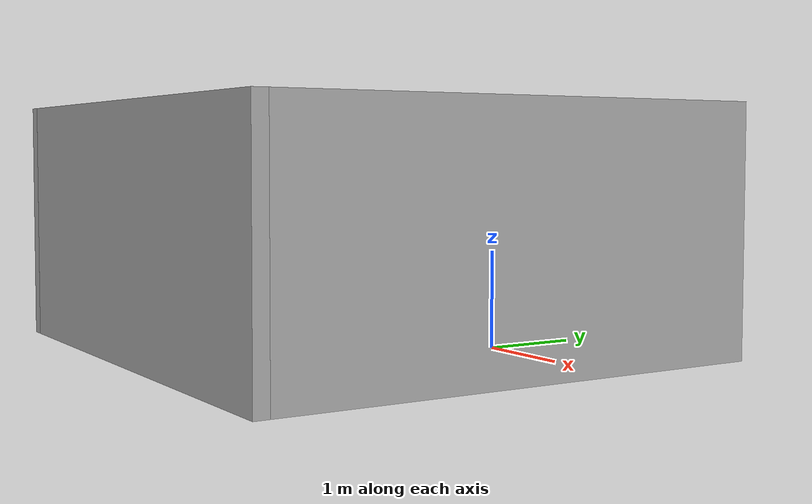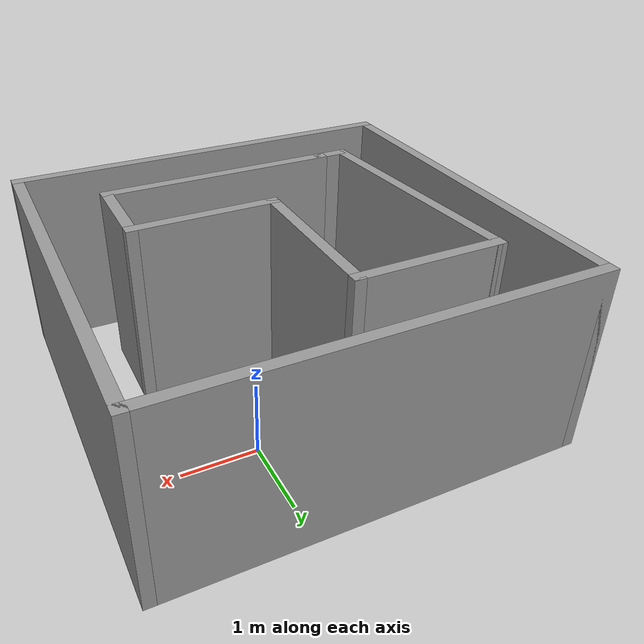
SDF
<?xml version='1.0'?>
<sdf version='1.6'>
  <model name='mymap5'>
    <pose frame=''>-0.82505 -1.06803 0 0 -0 0</pose>
    <link name='Wall_0'>
      <collision name='Wall_0_Collision'>
        <geometry>
          <box>
            <size>3.25 0.15 2.5</size>
          </box>
        </geometry>
        <pose frame=''>0 0 1.25 0 -0 0</pose>
      </collision>
      <visual name='Wall_0_Visual'>
        <pose frame=''>0 0 1.25 0 -0 0</pose>
        <geometry>
          <box>
            <size>3.25 0.15 2.5</size>
          </box>
        </geometry>
        <material>
          <script>
            <uri>file://media/materials/scripts/gazebo.material</uri>
            <name>Gazebo/Grey</name>
          </script>
          <ambient>1 1 1 1</ambient>
        </material>
      </visual>
      <pose frame=''>0.15505 -1.64197 0 0 -0 0</pose>
    </link>
    <link name='Wall_10'>
      <collision name='Wall_10_Collision'>
        <geometry>
          <box>
            <size>3.35975 0.15 2.5</size>
          </box>
        </geometry>
        <pose frame=''>0 0 1.25 0 -0 0</pose>
      </collision>
      <visual name='Wall_10_Visual'>
        <pose frame=''>0 0 1.25 0 -0 0</pose>
        <geometry>
          <box>
            <size>3.35975 0.15 2.5</size>
          </box>
        </geometry>
        <material>
          <script>
            <uri>file://media/materials/scripts/gazebo.material</uri>
            <name>Gazebo/Grey</name>
          </script>
          <ambient>1 1 1 1</ambient>
        </material>
      </visual>
      <pose frame=''>-1.86995 -0.041975 0 0 -0 1.64876</pose>
    </link>
    <link name='Wall_12'>
      <collision name='Wall_12_Collision'>
        <geometry>
          <box>
            <size>5.5 0.15 2.5</size>
          </box>
        </geometry>
        <pose frame=''>0 0 1.25 0 -0 0</pose>
      </collision>
      <visual name='Wall_12_Visual'>
        <pose frame=''>0 0 1.25 0 -0 0</pose>
        <geometry>
          <box>
            <size>5.5 0.15 2.5</size>
          </box>
        </geometry>
        <material>
          <script>
            <uri>file://media/materials/scripts/gazebo.material</uri>
            <name>Gazebo/Grey</name>
          </script>
          <ambient>1 1 1 1</ambient>
        </material>
      </visual>
      <pose frame=''>0 2.55 0 0 -0 0</pose>
    </link>
    <link name='Wall_13'>
      <collision name='Wall_13_Collision'>
        <geometry>
          <box>
            <size>5.25 0.15 2.5</size>
          </box>
        </geometry>
        <pose frame=''>0 0 1.25 0 -0 0</pose>
      </collision>
      <visual name='Wall_13_Visual'>
        <pose frame=''>0 0 1.25 0 -0 0</pose>
        <geometry>
          <box>
            <size>5.25 0.15 2.5</size>
          </box>
        </geometry>
        <material>
          <script>
            <uri>file://media/materials/scripts/gazebo.material</uri>
            <name>Gazebo/Grey</name>
          </script>
          <ambient>1 1 1 1</ambient>
        </material>
      </visual>
      <pose frame=''>2.675 0 0 0 0 -1.5708</pose>
    </link>
    <link name='Wall_14'>
      <collision name='Wall_14_Collision'>
        <geometry>
          <box>
            <size>5.5 0.15 2.5</size>
          </box>
        </geometry>
        <pose frame=''>0 0 1.25 0 -0 0</pose>
      </collision>
      <visual name='Wall_14_Visual'>
        <pose frame=''>0 0 1.25 0 -0 0</pose>
        <geometry>
          <box>
            <size>5.5 0.15 2.5</size>
          </box>
        </geometry>
        <material>
          <script>
            <uri>file://media/materials/scripts/gazebo.material</uri>
            <name>Gazebo/Grey</name>
          </script>
          <ambient>1 1 1 1</ambient>
        </material>
      </visual>
      <pose frame=''>0 -2.55 0 0 -0 3.14159</pose>
    </link>
    <link name='Wall_15'>
      <collision name='Wall_15_Collision'>
        <geometry>
          <box>
            <size>5.25 0.15 2.5</size>
          </box>
        </geometry>
        <pose frame=''>0 0 1.25 0 -0 0</pose>
      </collision>
      <visual name='Wall_15_Visual'>
        <pose frame=''>0 0 1.25 0 -0 0</pose>
        <geometry>
          <box>
            <size>5.25 0.15 2.5</size>
          </box>
        </geometry>
        <material>
          <script>
            <uri>file://media/materials/scripts/gazebo.material</uri>
            <name>Gazebo/Grey</name>
          </script>
          <ambient>1 1 1 1</ambient>
        </material>
      </visual>
      <pose frame=''>-2.675 0 0 0 -0 1.5708</pose>
    </link>
    <link name='Wall_2'>
      <collision name='Wall_2_Collision'>
        <geometry>
          <box>
            <size>1.25 0.15 2.5</size>
          </box>
        </geometry>
        <pose frame=''>0 0 1.25 0 -0 0</pose>
      </collision>
      <visual name='Wall_2_Visual'>
        <pose frame=''>0 0 1.25 0 -0 0</pose>
        <geometry>
          <box>
            <size>1.25 0.15 2.5</size>
          </box>
        </geometry>
        <material>
          <script>
            <uri>file://media/materials/scripts/gazebo.material</uri>
            <name>Gazebo/Grey</name>
          </script>
          <ambient>1 1 1 1</ambient>
        </material>
      </visual>
      <pose frame=''>1.70505 -1.09197 0 0 -0 1.5708</pose>
    </link>
    <link name='Wall_3'>
      <collision name='Wall_3_Collision'>
        <geometry>
          <box>
            <size>2 0.15 2.5</size>
          </box>
        </geometry>
        <pose frame=''>0 0 1.25 0 -0 0</pose>
      </collision>
      <visual name='Wall_3_Visual'>
        <pose frame=''>0 0 1.25 0 -0 0</pose>
        <geometry>
          <box>
            <size>2 0.15 2.5</size>
          </box>
        </geometry>
        <material>
          <script>
            <uri>file://media/materials/scripts/gazebo.material</uri>
            <name>Gazebo/Grey</name>
          </script>
          <ambient>1 1 1 1</ambient>
        </material>
      </visual>
      <pose frame=''>0.78005 -0.541975 0 0 -0 3.14159</pose>
    </link>
    <link name='Wall_5'>
      <collision name='Wall_5_Collision'>
        <geometry>
          <box>
            <size>2.25 0.15 2.5</size>
          </box>
        </geometry>
        <pose frame=''>0 0 1.25 0 -0 0</pose>
      </collision>
      <visual name='Wall_5_Visual'>
        <pose frame=''>0 0 1.25 0 -0 0</pose>
        <geometry>
          <box>
            <size>2.25 0.15 2.5</size>
          </box>
        </geometry>
        <material>
          <script>
            <uri>file://media/materials/scripts/gazebo.material</uri>
            <name>Gazebo/Grey</name>
          </script>
          <ambient>1 1 1 1</ambient>
        </material>
      </visual>
      <pose frame=''>-0.14495 0.508025 0 0 -0 1.5708</pose>
    </link>
    <link name='Wall_6'>
      <collision name='Wall_6_Collision'>
        <geometry>
          <box>
            <size>2 0.15 2.5</size>
          </box>
        </geometry>
        <pose frame=''>0 0 1.25 0 -0 0</pose>
      </collision>
      <visual name='Wall_6_Visual'>
        <pose frame=''>0 0 1.25 0 -0 0</pose>
        <geometry>
          <box>
            <size>2 0.15 2.5</size>
          </box>
        </geometry>
        <material>
          <script>
            <uri>file://media/materials/scripts/gazebo.material</uri>
            <name>Gazebo/Grey</name>
          </script>
          <ambient>1 1 1 1</ambient>
        </material>
      </visual>
      <pose frame=''>-1.06995 1.55802 0 0 -0 3.14159</pose>
    </link>
    <link name='Wall_9'>
      <collision name='Wall_9_Collision'>
        <geometry>
          <box>
            <size>0.5 0.15 2.5</size>
          </box>
        </geometry>
        <pose frame=''>0 0 1.25 0 -0 0</pose>
      </collision>
      <visual name='Wall_9_Visual'>
        <pose frame=''>0 0 1.25 0 -0 0</pose>
        <geometry>
          <box>
            <size>0.5 0.15 2.5</size>
          </box>
        </geometry>
        <material>
          <script>
            <uri>file://media/materials/scripts/gazebo.material</uri>
            <name>Gazebo/Grey</name>
          </script>
          <ambient>1 1 1 1</ambient>
        </material>
      </visual>
      <pose frame=''>-1.56995 -1.64197 0 0 -0 3.14159</pose>
    </link>
    <static>1</static>
  </model>
</sdf>
